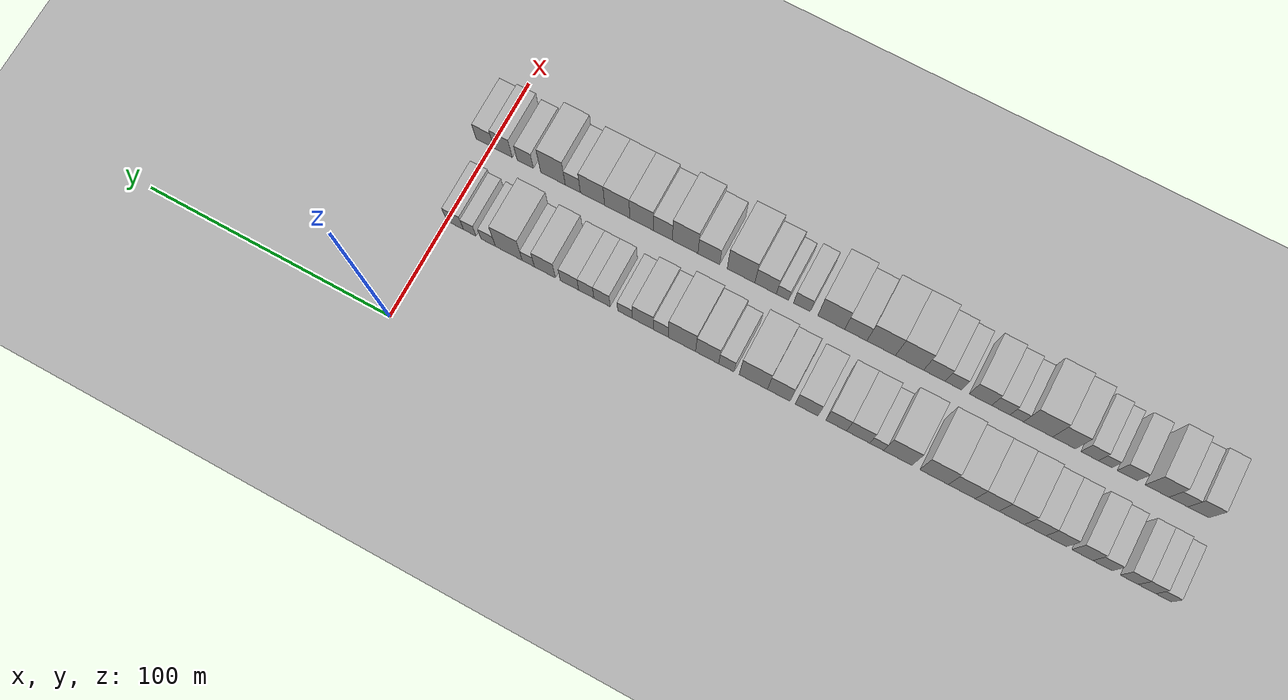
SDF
<sdf version="1.6">
 <world name="default">
  <include><name>ground_plane_1</name><uri>model://HANNAS_ground_plane</uri></include>
  <include>
   <name>ground_plane_2</name>
   <uri>model://HANNAS_ground_plane</uri>
   <pose>100 0 0  0 0 0</pose>
  </include>
  <model name="building_1">
   <static>1</static>
   <pose>50.0000 -279.1271 0 0.000000 0.000000 0.000000</pose>
   <link name="link">
    <pose>0 0 6.00 0 0 0</pose>
    <collision name="collision"><geometry><box><size>20.0000 5.7459 12.0000</size></box></geometry></collision>
    <visual name="visual">
     <cast_shadows>0</cast_shadows>
     <geometry><box><size>20.0000 5.7459 12.0000</size></box></geometry>
     <material>
      <script>
       <uri>model://HANNAS_wall/materials/scripts</uri>
       <uri>model://HANNAS_wall/materials/textures</uri>
       <name>vrc/HANNAS_wall</name>
      </script>
     </material>
    </visual>
   </link>
  </model>
  <model name="building_2">
   <static>1</static>
   <pose>50.0000 -273.0447 0 0.000000 0.000000 0.000000</pose>
   <link name="link">
    <pose>0 0 7.50 0 0 0</pose>
    <collision name="collision"><geometry><box><size>20.0000 6.4189 15.0000</size></box></geometry></collision>
    <visual name="visual">
     <cast_shadows>0</cast_shadows>
     <geometry><box><size>20.0000 6.4189 15.0000</size></box></geometry>
     <material>
      <script>
       <uri>model://HANNAS_wall/materials/scripts</uri>
       <uri>model://HANNAS_wall/materials/textures</uri>
       <name>vrc/HANNAS_wall</name>
      </script>
     </material>
    </visual>
   </link>
  </model>
  <model name="building_3">
   <static>1</static>
   <pose>50.0000 -266.5574 0 0.000000 0.000000 0.000000</pose>
   <link name="link">
    <pose>0 0 7.50 0 0 0</pose>
    <collision name="collision"><geometry><box><size>20.0000 6.5558 15.0000</size></box></geometry></collision>
    <visual name="visual">
     <cast_shadows>0</cast_shadows>
     <geometry><box><size>20.0000 6.5558 15.0000</size></box></geometry>
     <material>
      <script>
       <uri>model://HANNAS_wall/materials/scripts</uri>
       <uri>model://HANNAS_wall/materials/textures</uri>
       <name>vrc/HANNAS_wall</name>
      </script>
     </material>
    </visual>
   </link>
  </model>
  <model name="building_4">
   <static>1</static>
   <pose>50.0000 -256.7154 0 0.000000 0.000000 0.000000</pose>
   <link name="link">
    <pose>0 0 7.50 0 0 0</pose>
    <collision name="collision"><geometry><box><size>20.0000 7.1282 15.0000</size></box></geometry></collision>
    <visual name="visual">
     <cast_shadows>0</cast_shadows>
     <geometry><box><size>20.0000 7.1282 15.0000</size></box></geometry>
     <material>
      <script>
       <uri>model://HANNAS_wall/materials/scripts</uri>
       <uri>model://HANNAS_wall/materials/textures</uri>
       <name>vrc/HANNAS_wall</name>
      </script>
     </material>
    </visual>
   </link>
  </model>
  <model name="building_5">
   <static>1</static>
   <pose>50.0000 -249.2632 0 0.000000 0.000000 0.000000</pose>
   <link name="link">
    <pose>0 0 9.00 0 0 0</pose>
    <collision name="collision"><geometry><box><size>20.0000 7.7762 18.0000</size></box></geometry></collision>
    <visual name="visual">
     <cast_shadows>0</cast_shadows>
     <geometry><box><size>20.0000 7.7762 18.0000</size></box></geometry>
     <material>
      <script>
       <uri>model://HANNAS_wall/materials/scripts</uri>
       <uri>model://HANNAS_wall/materials/textures</uri>
       <name>vrc/HANNAS_wall</name>
      </script>
     </material>
    </visual>
   </link>
  </model>
  <model name="building_6">
   <static>1</static>
   <pose>50.0000 -239.5126 0 0.000000 0.000000 0.000000</pose>
   <link name="link">
    <pose>0 0 9.00 0 0 0</pose>
    <collision name="collision"><geometry><box><size>20.0000 7.7250 18.0000</size></box></geometry></collision>
    <visual name="visual">
     <cast_shadows>0</cast_shadows>
     <geometry><box><size>20.0000 7.7250 18.0000</size></box></geometry>
     <material>
      <script>
       <uri>model://HANNAS_wall/materials/scripts</uri>
       <uri>model://HANNAS_wall/materials/textures</uri>
       <name>vrc/HANNAS_wall</name>
      </script>
     </material>
    </visual>
   </link>
  </model>
  <model name="building_7">
   <static>1</static>
   <pose>50.0000 -231.6655 0 0.000000 0.000000 0.000000</pose>
   <link name="link">
    <pose>0 0 9.00 0 0 0</pose>
    <collision name="collision"><geometry><box><size>20.0000 7.9691 18.0000</size></box></geometry></collision>
    <visual name="visual">
     <cast_shadows>0</cast_shadows>
     <geometry><box><size>20.0000 7.9691 18.0000</size></box></geometry>
     <material>
      <script>
       <uri>model://HANNAS_wall/materials/scripts</uri>
       <uri>model://HANNAS_wall/materials/textures</uri>
       <name>vrc/HANNAS_wall</name>
      </script>
     </material>
    </visual>
   </link>
  </model>
  <model name="building_8">
   <static>1</static>
   <pose>50.0000 -222.8988 0 0.000000 0.000000 0.000000</pose>
   <link name="link">
    <pose>0 0 10.50 0 0 0</pose>
    <collision name="collision"><geometry><box><size>20.0000 9.5644 21.0000</size></box></geometry></collision>
    <visual name="visual">
     <cast_shadows>0</cast_shadows>
     <geometry><box><size>20.0000 9.5644 21.0000</size></box></geometry>
     <material>
      <script>
       <uri>model://HANNAS_wall/materials/scripts</uri>
       <uri>model://HANNAS_wall/materials/textures</uri>
       <name>vrc/HANNAS_wall</name>
      </script>
     </material>
    </visual>
   </link>
  </model>
  <model name="building_9">
   <static>1</static>
   <pose>50.0000 -213.6746 0 0.000000 0.000000 0.000000</pose>
   <link name="link">
    <pose>0 0 10.50 0 0 0</pose>
    <collision name="collision"><geometry><box><size>20.0000 8.8841 21.0000</size></box></geometry></collision>
    <visual name="visual">
     <cast_shadows>0</cast_shadows>
     <geometry><box><size>20.0000 8.8841 21.0000</size></box></geometry>
     <material>
      <script>
       <uri>model://HANNAS_wall/materials/scripts</uri>
       <uri>model://HANNAS_wall/materials/textures</uri>
       <name>vrc/HANNAS_wall</name>
      </script>
     </material>
    </visual>
   </link>
  </model>
  <model name="building_10">
   <static>1</static>
   <pose>50.0000 -204.1396 0 0.000000 0.000000 0.000000</pose>
   <link name="link">
    <pose>0 0 10.50 0 0 0</pose>
    <collision name="collision"><geometry><box><size>20.0000 10.1860 21.0000</size></box></geometry></collision>
    <visual name="visual">
     <cast_shadows>0</cast_shadows>
     <geometry><box><size>20.0000 10.1860 21.0000</size></box></geometry>
     <material>
      <script>
       <uri>model://HANNAS_wall/materials/scripts</uri>
       <uri>model://HANNAS_wall/materials/textures</uri>
       <name>vrc/HANNAS_wall</name>
      </script>
     </material>
    </visual>
   </link>
  </model>
  <model name="building_11">
   <static>1</static>
   <pose>50.0000 -193.5970 0 0.000000 0.000000 0.000000</pose>
   <link name="link">
    <pose>0 0 12.00 0 0 0</pose>
    <collision name="collision"><geometry><box><size>20.0000 10.8992 24.0000</size></box></geometry></collision>
    <visual name="visual">
     <cast_shadows>0</cast_shadows>
     <geometry><box><size>20.0000 10.8992 24.0000</size></box></geometry>
     <material>
      <script>
       <uri>model://HANNAS_wall/materials/scripts</uri>
       <uri>model://HANNAS_wall/materials/textures</uri>
       <name>vrc/HANNAS_wall</name>
      </script>
     </material>
    </visual>
   </link>
  </model>
  <model name="building_12">
   <static>1</static>
   <pose>50.0000 -179.7389 0 0.000000 0.000000 0.000000</pose>
   <link name="link">
    <pose>0 0 12.00 0 0 0</pose>
    <collision name="collision"><geometry><box><size>20.0000 10.8170 24.0000</size></box></geometry></collision>
    <visual name="visual">
     <cast_shadows>0</cast_shadows>
     <geometry><box><size>20.0000 10.8170 24.0000</size></box></geometry>
     <material>
      <script>
       <uri>model://HANNAS_wall/materials/scripts</uri>
       <uri>model://HANNAS_wall/materials/textures</uri>
       <name>vrc/HANNAS_wall</name>
      </script>
     </material>
    </visual>
   </link>
  </model>
  <model name="building_13">
   <static>1</static>
   <pose>50.0000 -171.6334 0 0.000000 0.000000 0.000000</pose>
   <link name="link">
    <pose>0 0 6.00 0 0 0</pose>
    <collision name="collision"><geometry><box><size>20.0000 5.3941 12.0000</size></box></geometry></collision>
    <visual name="visual">
     <cast_shadows>0</cast_shadows>
     <geometry><box><size>20.0000 5.3941 12.0000</size></box></geometry>
     <material>
      <script>
       <uri>model://HANNAS_wall/materials/scripts</uri>
       <uri>model://HANNAS_wall/materials/textures</uri>
       <name>vrc/HANNAS_wall</name>
      </script>
     </material>
    </visual>
   </link>
  </model>
  <model name="building_14">
   <static>1</static>
   <pose>50.0000 -164.4834 0 0.000000 0.000000 0.000000</pose>
   <link name="link">
    <pose>0 0 9.00 0 0 0</pose>
    <collision name="collision"><geometry><box><size>20.0000 8.9060 18.0000</size></box></geometry></collision>
    <visual name="visual">
     <cast_shadows>0</cast_shadows>
     <geometry><box><size>20.0000 8.9060 18.0000</size></box></geometry>
     <material>
      <script>
       <uri>model://HANNAS_wall/materials/scripts</uri>
       <uri>model://HANNAS_wall/materials/textures</uri>
       <name>vrc/HANNAS_wall</name>
      </script>
     </material>
    </visual>
   </link>
  </model>
  <model name="building_15">
   <static>1</static>
   <pose>50.0000 -155.9993 0 0.000000 0.000000 0.000000</pose>
   <link name="link">
    <pose>0 0 9.00 0 0 0</pose>
    <collision name="collision"><geometry><box><size>20.0000 8.0620 18.0000</size></box></geometry></collision>
    <visual name="visual">
     <cast_shadows>0</cast_shadows>
     <geometry><box><size>20.0000 8.0620 18.0000</size></box></geometry>
     <material>
      <script>
       <uri>model://HANNAS_wall/materials/scripts</uri>
       <uri>model://HANNAS_wall/materials/textures</uri>
       <name>vrc/HANNAS_wall</name>
      </script>
     </material>
    </visual>
   </link>
  </model>
  <model name="building_16">
   <static>1</static>
   <pose>50.0000 -144.5254 0 0.000000 0.000000 0.000000</pose>
   <link name="link">
    <pose>0 0 9.00 0 0 0</pose>
    <collision name="collision"><geometry><box><size>20.0000 8.8857 18.0000</size></box></geometry></collision>
    <visual name="visual">
     <cast_shadows>0</cast_shadows>
     <geometry><box><size>20.0000 8.8857 18.0000</size></box></geometry>
     <material>
      <script>
       <uri>model://HANNAS_wall/materials/scripts</uri>
       <uri>model://HANNAS_wall/materials/textures</uri>
       <name>vrc/HANNAS_wall</name>
      </script>
     </material>
    </visual>
   </link>
  </model>
  <model name="building_17">
   <static>1</static>
   <pose>50.0000 -133.6724 0 0.000000 0.000000 0.000000</pose>
   <link name="link">
    <pose>0 0 10.50 0 0 0</pose>
    <collision name="collision"><geometry><box><size>20.0000 8.8204 21.0000</size></box></geometry></collision>
    <visual name="visual">
     <cast_shadows>0</cast_shadows>
     <geometry><box><size>20.0000 8.8204 21.0000</size></box></geometry>
     <material>
      <script>
       <uri>model://HANNAS_wall/materials/scripts</uri>
       <uri>model://HANNAS_wall/materials/textures</uri>
       <name>vrc/HANNAS_wall</name>
      </script>
     </material>
    </visual>
   </link>
  </model>
  <model name="building_18">
   <static>1</static>
   <pose>50.0000 -123.7028 0 0.000000 0.000000 0.000000</pose>
   <link name="link">
    <pose>0 0 12.00 0 0 0</pose>
    <collision name="collision"><geometry><box><size>20.0000 11.1187 24.0000</size></box></geometry></collision>
    <visual name="visual">
     <cast_shadows>0</cast_shadows>
     <geometry><box><size>20.0000 11.1187 24.0000</size></box></geometry>
     <material>
      <script>
       <uri>model://HANNAS_wall/materials/scripts</uri>
       <uri>model://HANNAS_wall/materials/textures</uri>
       <name>vrc/HANNAS_wall</name>
      </script>
     </material>
    </visual>
   </link>
  </model>
  <model name="building_19">
   <static>1</static>
   <pose>50.0000 -113.0769 0 0.000000 0.000000 0.000000</pose>
   <link name="link">
    <pose>0 0 7.50 0 0 0</pose>
    <collision name="collision"><geometry><box><size>20.0000 6.1330 15.0000</size></box></geometry></collision>
    <visual name="visual">
     <cast_shadows>0</cast_shadows>
     <geometry><box><size>20.0000 6.1330 15.0000</size></box></geometry>
     <material>
      <script>
       <uri>model://HANNAS_wall/materials/scripts</uri>
       <uri>model://HANNAS_wall/materials/textures</uri>
       <name>vrc/HANNAS_wall</name>
      </script>
     </material>
    </visual>
   </link>
  </model>
  <model name="building_20">
   <static>1</static>
   <pose>50.0000 -105.4436 0 0.000000 0.000000 0.000000</pose>
   <link name="link">
    <pose>0 0 10.50 0 0 0</pose>
    <collision name="collision"><geometry><box><size>20.0000 9.1338 21.0000</size></box></geometry></collision>
    <visual name="visual">
     <cast_shadows>0</cast_shadows>
     <geometry><box><size>20.0000 9.1338 21.0000</size></box></geometry>
     <material>
      <script>
       <uri>model://HANNAS_wall/materials/scripts</uri>
       <uri>model://HANNAS_wall/materials/textures</uri>
       <name>vrc/HANNAS_wall</name>
      </script>
     </material>
    </visual>
   </link>
  </model>
  <model name="building_21">
   <static>1</static>
   <pose>50.0000 -95.4409 0 0.000000 0.000000 0.000000</pose>
   <link name="link">
    <pose>0 0 12.00 0 0 0</pose>
    <collision name="collision"><geometry><box><size>20.0000 10.8715 24.0000</size></box></geometry></collision>
    <visual name="visual">
     <cast_shadows>0</cast_shadows>
     <geometry><box><size>20.0000 10.8715 24.0000</size></box></geometry>
     <material>
      <script>
       <uri>model://HANNAS_wall/materials/scripts</uri>
       <uri>model://HANNAS_wall/materials/textures</uri>
       <name>vrc/HANNAS_wall</name>
      </script>
     </material>
    </visual>
   </link>
  </model>
  <model name="building_22">
   <static>1</static>
   <pose>50.0000 -86.9923 0 0.000000 0.000000 0.000000</pose>
   <link name="link">
    <pose>0 0 7.50 0 0 0</pose>
    <collision name="collision"><geometry><box><size>20.0000 6.0256 15.0000</size></box></geometry></collision>
    <visual name="visual">
     <cast_shadows>0</cast_shadows>
     <geometry><box><size>20.0000 6.0256 15.0000</size></box></geometry>
     <material>
      <script>
       <uri>model://HANNAS_wall/materials/scripts</uri>
       <uri>model://HANNAS_wall/materials/textures</uri>
       <name>vrc/HANNAS_wall</name>
      </script>
     </material>
    </visual>
   </link>
  </model>
  <model name="building_23">
   <static>1</static>
   <pose>50.0000 -79.8421 0 0.000000 0.000000 0.000000</pose>
   <link name="link">
    <pose>0 0 9.00 0 0 0</pose>
    <collision name="collision"><geometry><box><size>20.0000 8.2749 18.0000</size></box></geometry></collision>
    <visual name="visual">
     <cast_shadows>0</cast_shadows>
     <geometry><box><size>20.0000 8.2749 18.0000</size></box></geometry>
     <material>
      <script>
       <uri>model://HANNAS_wall/materials/scripts</uri>
       <uri>model://HANNAS_wall/materials/textures</uri>
       <name>vrc/HANNAS_wall</name>
      </script>
     </material>
    </visual>
   </link>
  </model>
  <model name="building_24">
   <static>1</static>
   <pose>50.0000 -72.7355 0 0.000000 0.000000 0.000000</pose>
   <link name="link">
    <pose>0 0 6.00 0 0 0</pose>
    <collision name="collision"><geometry><box><size>20.0000 5.9383 12.0000</size></box></geometry></collision>
    <visual name="visual">
     <cast_shadows>0</cast_shadows>
     <geometry><box><size>20.0000 5.9383 12.0000</size></box></geometry>
     <material>
      <script>
       <uri>model://HANNAS_wall/materials/scripts</uri>
       <uri>model://HANNAS_wall/materials/textures</uri>
       <name>vrc/HANNAS_wall</name>
      </script>
     </material>
    </visual>
   </link>
  </model>
  <model name="building_25">
   <static>1</static>
   <pose>50.0000 -63.4808 0 0.000000 0.000000 0.000000</pose>
   <link name="link">
    <pose>0 0 7.50 0 0 0</pose>
    <collision name="collision"><geometry><box><size>20.0000 6.5712 15.0000</size></box></geometry></collision>
    <visual name="visual">
     <cast_shadows>0</cast_shadows>
     <geometry><box><size>20.0000 6.5712 15.0000</size></box></geometry>
     <material>
      <script>
       <uri>model://HANNAS_wall/materials/scripts</uri>
       <uri>model://HANNAS_wall/materials/textures</uri>
       <name>vrc/HANNAS_wall</name>
      </script>
     </material>
    </visual>
   </link>
  </model>
  <model name="building_26">
   <static>1</static>
   <pose>50.0000 -57.1335 0 0.000000 0.000000 0.000000</pose>
   <link name="link">
    <pose>0 0 7.50 0 0 0</pose>
    <collision name="collision"><geometry><box><size>20.0000 6.1234 15.0000</size></box></geometry></collision>
    <visual name="visual">
     <cast_shadows>0</cast_shadows>
     <geometry><box><size>20.0000 6.1234 15.0000</size></box></geometry>
     <material>
      <script>
       <uri>model://HANNAS_wall/materials/scripts</uri>
       <uri>model://HANNAS_wall/materials/textures</uri>
       <name>vrc/HANNAS_wall</name>
      </script>
     </material>
    </visual>
   </link>
  </model>
  <model name="building_27">
   <static>1</static>
   <pose>50.0000 -50.3300 0 0.000000 0.000000 0.000000</pose>
   <link name="link">
    <pose>0 0 7.50 0 0 0</pose>
    <collision name="collision"><geometry><box><size>20.0000 7.4836 15.0000</size></box></geometry></collision>
    <visual name="visual">
     <cast_shadows>0</cast_shadows>
     <geometry><box><size>20.0000 7.4836 15.0000</size></box></geometry>
     <material>
      <script>
       <uri>model://HANNAS_wall/materials/scripts</uri>
       <uri>model://HANNAS_wall/materials/textures</uri>
       <name>vrc/HANNAS_wall</name>
      </script>
     </material>
    </visual>
   </link>
  </model>
  <model name="building_28">
   <static>1</static>
   <pose>50.0000 -40.3226 0 0.000000 0.000000 0.000000</pose>
   <link name="link">
    <pose>0 0 9.00 0 0 0</pose>
    <collision name="collision"><geometry><box><size>20.0000 8.5311 18.0000</size></box></geometry></collision>
    <visual name="visual">
     <cast_shadows>0</cast_shadows>
     <geometry><box><size>20.0000 8.5311 18.0000</size></box></geometry>
     <material>
      <script>
       <uri>model://HANNAS_wall/materials/scripts</uri>
       <uri>model://HANNAS_wall/materials/textures</uri>
       <name>vrc/HANNAS_wall</name>
      </script>
     </material>
    </visual>
   </link>
  </model>
  <model name="building_29">
   <static>1</static>
   <pose>50.0000 -33.5444 0 0.000000 0.000000 0.000000</pose>
   <link name="link">
    <pose>0 0 6.00 0 0 0</pose>
    <collision name="collision"><geometry><box><size>20.0000 5.0253 12.0000</size></box></geometry></collision>
    <visual name="visual">
     <cast_shadows>0</cast_shadows>
     <geometry><box><size>20.0000 5.0253 12.0000</size></box></geometry>
     <material>
      <script>
       <uri>model://HANNAS_wall/materials/scripts</uri>
       <uri>model://HANNAS_wall/materials/textures</uri>
       <name>vrc/HANNAS_wall</name>
      </script>
     </material>
    </visual>
   </link>
  </model>
  <model name="building_30">
   <static>1</static>
   <pose>50.0000 -25.5399 0 0.000000 0.000000 0.000000</pose>
   <link name="link">
    <pose>0 0 12.00 0 0 0</pose>
    <collision name="collision"><geometry><box><size>20.0000 10.9839 24.0000</size></box></geometry></collision>
    <visual name="visual">
     <cast_shadows>0</cast_shadows>
     <geometry><box><size>20.0000 10.9839 24.0000</size></box></geometry>
     <material>
      <script>
       <uri>model://HANNAS_wall/materials/scripts</uri>
       <uri>model://HANNAS_wall/materials/textures</uri>
       <name>vrc/HANNAS_wall</name>
      </script>
     </material>
    </visual>
   </link>
  </model>
  <model name="building_31">
   <static>1</static>
   <pose>50.0000 -17.0664 0 0.000000 0.000000 0.000000</pose>
   <link name="link">
    <pose>0 0 6.00 0 0 0</pose>
    <collision name="collision"><geometry><box><size>20.0000 5.9630 12.0000</size></box></geometry></collision>
    <visual name="visual">
     <cast_shadows>0</cast_shadows>
     <geometry><box><size>20.0000 5.9630 12.0000</size></box></geometry>
     <material>
      <script>
       <uri>model://HANNAS_wall/materials/scripts</uri>
       <uri>model://HANNAS_wall/materials/textures</uri>
       <name>vrc/HANNAS_wall</name>
      </script>
     </material>
    </visual>
   </link>
  </model>
  <model name="building_32">
   <static>1</static>
   <pose>50.0000 -9.5137 0 0.000000 0.000000 0.000000</pose>
   <link name="link">
    <pose>0 0 6.00 0 0 0</pose>
    <collision name="collision"><geometry><box><size>20.0000 5.1426 12.0000</size></box></geometry></collision>
    <visual name="visual">
     <cast_shadows>0</cast_shadows>
     <geometry><box><size>20.0000 5.1426 12.0000</size></box></geometry>
     <material>
      <script>
       <uri>model://HANNAS_wall/materials/scripts</uri>
       <uri>model://HANNAS_wall/materials/textures</uri>
       <name>vrc/HANNAS_wall</name>
      </script>
     </material>
    </visual>
   </link>
  </model>
  <model name="building_33">
   <static>1</static>
   <pose>50.0000 -3.4888 0 0.000000 0.000000 0.000000</pose>
   <link name="link">
    <pose>0 0 7.50 0 0 0</pose>
    <collision name="collision"><geometry><box><size>20.0000 6.9071 15.0000</size></box></geometry></collision>
    <visual name="visual">
     <cast_shadows>0</cast_shadows>
     <geometry><box><size>20.0000 6.9071 15.0000</size></box></geometry>
     <material>
      <script>
       <uri>model://HANNAS_wall/materials/scripts</uri>
       <uri>model://HANNAS_wall/materials/textures</uri>
       <name>vrc/HANNAS_wall</name>
      </script>
     </material>
    </visual>
   </link>
  </model>
  <model name="building_66">
   <static>1</static>
   <pose>82.0000 -278.1258 0 0.000000 0.000000 0.000000</pose>
   <link name="link">
    <pose>0 0 9.00 0 0 0</pose>
    <collision name="collision"><geometry><box><size>20.0000 7.7484 18.0000</size></box></geometry></collision>
    <visual name="visual">
     <cast_shadows>0</cast_shadows>
     <geometry><box><size>20.0000 7.7484 18.0000</size></box></geometry>
     <material>
      <script>
       <uri>model://HANNAS_wall/materials/scripts</uri>
       <uri>model://HANNAS_wall/materials/textures</uri>
       <name>vrc/HANNAS_wall</name>
      </script>
     </material>
    </visual>
   </link>
  </model>
  <model name="building_67">
   <static>1</static>
   <pose>82.0000 -270.7622 0 0.000000 0.000000 0.000000</pose>
   <link name="link">
    <pose>0 0 7.50 0 0 0</pose>
    <collision name="collision"><geometry><box><size>20.0000 6.9788 15.0000</size></box></geometry></collision>
    <visual name="visual">
     <cast_shadows>0</cast_shadows>
     <geometry><box><size>20.0000 6.9788 15.0000</size></box></geometry>
     <material>
      <script>
       <uri>model://HANNAS_wall/materials/scripts</uri>
       <uri>model://HANNAS_wall/materials/textures</uri>
       <name>vrc/HANNAS_wall</name>
      </script>
     </material>
    </visual>
   </link>
  </model>
  <model name="building_68">
   <static>1</static>
   <pose>82.0000 -262.8454 0 0.000000 0.000000 0.000000</pose>
   <link name="link">
    <pose>0 0 10.50 0 0 0</pose>
    <collision name="collision"><geometry><box><size>20.0000 8.8550 21.0000</size></box></geometry></collision>
    <visual name="visual">
     <cast_shadows>0</cast_shadows>
     <geometry><box><size>20.0000 8.8550 21.0000</size></box></geometry>
     <material>
      <script>
       <uri>model://HANNAS_wall/materials/scripts</uri>
       <uri>model://HANNAS_wall/materials/textures</uri>
       <name>vrc/HANNAS_wall</name>
      </script>
     </material>
    </visual>
   </link>
  </model>
  <model name="building_69">
   <static>1</static>
   <pose>82.0000 -251.6783 0 0.000000 0.000000 0.000000</pose>
   <link name="link">
    <pose>0 0 7.50 0 0 0</pose>
    <collision name="collision"><geometry><box><size>20.0000 7.4792 15.0000</size></box></geometry></collision>
    <visual name="visual">
     <cast_shadows>0</cast_shadows>
     <geometry><box><size>20.0000 7.4792 15.0000</size></box></geometry>
     <material>
      <script>
       <uri>model://HANNAS_wall/materials/scripts</uri>
       <uri>model://HANNAS_wall/materials/textures</uri>
       <name>vrc/HANNAS_wall</name>
      </script>
     </material>
    </visual>
   </link>
  </model>
  <model name="building_70">
   <static>1</static>
   <pose>82.0000 -243.3795 0 0.000000 0.000000 0.000000</pose>
   <link name="link">
    <pose>0 0 6.00 0 0 0</pose>
    <collision name="collision"><geometry><box><size>20.0000 5.1184 12.0000</size></box></geometry></collision>
    <visual name="visual">
     <cast_shadows>0</cast_shadows>
     <geometry><box><size>20.0000 5.1184 12.0000</size></box></geometry>
     <material>
      <script>
       <uri>model://HANNAS_wall/materials/scripts</uri>
       <uri>model://HANNAS_wall/materials/textures</uri>
       <name>vrc/HANNAS_wall</name>
      </script>
     </material>
    </visual>
   </link>
  </model>
  <model name="building_71">
   <static>1</static>
   <pose>82.0000 -237.5381 0 0.000000 0.000000 0.000000</pose>
   <link name="link">
    <pose>0 0 7.50 0 0 0</pose>
    <collision name="collision"><geometry><box><size>20.0000 6.5644 15.0000</size></box></geometry></collision>
    <visual name="visual">
     <cast_shadows>0</cast_shadows>
     <geometry><box><size>20.0000 6.5644 15.0000</size></box></geometry>
     <material>
      <script>
       <uri>model://HANNAS_wall/materials/scripts</uri>
       <uri>model://HANNAS_wall/materials/textures</uri>
       <name>vrc/HANNAS_wall</name>
      </script>
     </material>
    </visual>
   </link>
  </model>
  <model name="building_72">
   <static>1</static>
   <pose>82.0000 -227.9323 0 0.000000 0.000000 0.000000</pose>
   <link name="link">
    <pose>0 0 10.50 0 0 0</pose>
    <collision name="collision"><geometry><box><size>20.0000 8.6473 21.0000</size></box></geometry></collision>
    <visual name="visual">
     <cast_shadows>0</cast_shadows>
     <geometry><box><size>20.0000 8.6473 21.0000</size></box></geometry>
     <material>
      <script>
       <uri>model://HANNAS_wall/materials/scripts</uri>
       <uri>model://HANNAS_wall/materials/textures</uri>
       <name>vrc/HANNAS_wall</name>
      </script>
     </material>
    </visual>
   </link>
  </model>
  <model name="building_73">
   <static>1</static>
   <pose>82.0000 -218.0600 0 0.000000 0.000000 0.000000</pose>
   <link name="link">
    <pose>0 0 12.00 0 0 0</pose>
    <collision name="collision"><geometry><box><size>20.0000 11.0973 24.0000</size></box></geometry></collision>
    <visual name="visual">
     <cast_shadows>0</cast_shadows>
     <geometry><box><size>20.0000 11.0973 24.0000</size></box></geometry>
     <material>
      <script>
       <uri>model://HANNAS_wall/materials/scripts</uri>
       <uri>model://HANNAS_wall/materials/textures</uri>
       <name>vrc/HANNAS_wall</name>
      </script>
     </material>
    </visual>
   </link>
  </model>
  <model name="building_74">
   <static>1</static>
   <pose>82.0000 -209.9488 0 0.000000 0.000000 0.000000</pose>
   <link name="link">
    <pose>0 0 6.00 0 0 0</pose>
    <collision name="collision"><geometry><box><size>20.0000 5.1251 12.0000</size></box></geometry></collision>
    <visual name="visual">
     <cast_shadows>0</cast_shadows>
     <geometry><box><size>20.0000 5.1251 12.0000</size></box></geometry>
     <material>
      <script>
       <uri>model://HANNAS_wall/materials/scripts</uri>
       <uri>model://HANNAS_wall/materials/textures</uri>
       <name>vrc/HANNAS_wall</name>
      </script>
     </material>
    </visual>
   </link>
  </model>
  <model name="building_75">
   <static>1</static>
   <pose>82.0000 -203.8757 0 0.000000 0.000000 0.000000</pose>
   <link name="link">
    <pose>0 0 7.50 0 0 0</pose>
    <collision name="collision"><geometry><box><size>20.0000 7.0211 15.0000</size></box></geometry></collision>
    <visual name="visual">
     <cast_shadows>0</cast_shadows>
     <geometry><box><size>20.0000 7.0211 15.0000</size></box></geometry>
     <material>
      <script>
       <uri>model://HANNAS_wall/materials/scripts</uri>
       <uri>model://HANNAS_wall/materials/textures</uri>
       <name>vrc/HANNAS_wall</name>
      </script>
     </material>
    </visual>
   </link>
  </model>
  <model name="building_76">
   <static>1</static>
   <pose>82.0000 -196.0685 0 0.000000 0.000000 0.000000</pose>
   <link name="link">
    <pose>0 0 9.00 0 0 0</pose>
    <collision name="collision"><geometry><box><size>20.0000 8.5933 18.0000</size></box></geometry></collision>
    <visual name="visual">
     <cast_shadows>0</cast_shadows>
     <geometry><box><size>20.0000 8.5933 18.0000</size></box></geometry>
     <material>
      <script>
       <uri>model://HANNAS_wall/materials/scripts</uri>
       <uri>model://HANNAS_wall/materials/textures</uri>
       <name>vrc/HANNAS_wall</name>
      </script>
     </material>
    </visual>
   </link>
  </model>
  <model name="building_77">
   <static>1</static>
   <pose>82.0000 -185.5976 0 0.000000 0.000000 0.000000</pose>
   <link name="link">
    <pose>0 0 7.50 0 0 0</pose>
    <collision name="collision"><geometry><box><size>20.0000 6.3484 15.0000</size></box></geometry></collision>
    <visual name="visual">
     <cast_shadows>0</cast_shadows>
     <geometry><box><size>20.0000 6.3484 15.0000</size></box></geometry>
     <material>
      <script>
       <uri>model://HANNAS_wall/materials/scripts</uri>
       <uri>model://HANNAS_wall/materials/textures</uri>
       <name>vrc/HANNAS_wall</name>
      </script>
     </material>
    </visual>
   </link>
  </model>
  <model name="building_78">
   <static>1</static>
   <pose>82.0000 -178.2607 0 0.000000 0.000000 0.000000</pose>
   <link name="link">
    <pose>0 0 9.00 0 0 0</pose>
    <collision name="collision"><geometry><box><size>20.0000 8.3253 18.0000</size></box></geometry></collision>
    <visual name="visual">
     <cast_shadows>0</cast_shadows>
     <geometry><box><size>20.0000 8.3253 18.0000</size></box></geometry>
     <material>
      <script>
       <uri>model://HANNAS_wall/materials/scripts</uri>
       <uri>model://HANNAS_wall/materials/textures</uri>
       <name>vrc/HANNAS_wall</name>
      </script>
     </material>
    </visual>
   </link>
  </model>
  <model name="building_79">
   <static>1</static>
   <pose>82.0000 -168.6350 0 0.000000 0.000000 0.000000</pose>
   <link name="link">
    <pose>0 0 12.00 0 0 0</pose>
    <collision name="collision"><geometry><box><size>20.0000 10.9263 24.0000</size></box></geometry></collision>
    <visual name="visual">
     <cast_shadows>0</cast_shadows>
     <geometry><box><size>20.0000 10.9263 24.0000</size></box></geometry>
     <material>
      <script>
       <uri>model://HANNAS_wall/materials/scripts</uri>
       <uri>model://HANNAS_wall/materials/textures</uri>
       <name>vrc/HANNAS_wall</name>
      </script>
     </material>
    </visual>
   </link>
  </model>
  <model name="building_80">
   <static>1</static>
   <pose>82.0000 -157.5782 0 0.000000 0.000000 0.000000</pose>
   <link name="link">
    <pose>0 0 12.00 0 0 0</pose>
    <collision name="collision"><geometry><box><size>20.0000 11.1873 24.0000</size></box></geometry></collision>
    <visual name="visual">
     <cast_shadows>0</cast_shadows>
     <geometry><box><size>20.0000 11.1873 24.0000</size></box></geometry>
     <material>
      <script>
       <uri>model://HANNAS_wall/materials/scripts</uri>
       <uri>model://HANNAS_wall/materials/textures</uri>
       <name>vrc/HANNAS_wall</name>
      </script>
     </material>
    </visual>
   </link>
  </model>
  <model name="building_81">
   <static>1</static>
   <pose>82.0000 -147.6214 0 0.000000 0.000000 0.000000</pose>
   <link name="link">
    <pose>0 0 9.00 0 0 0</pose>
    <collision name="collision"><geometry><box><size>20.0000 8.7261 18.0000</size></box></geometry></collision>
    <visual name="visual">
     <cast_shadows>0</cast_shadows>
     <geometry><box><size>20.0000 8.7261 18.0000</size></box></geometry>
     <material>
      <script>
       <uri>model://HANNAS_wall/materials/scripts</uri>
       <uri>model://HANNAS_wall/materials/textures</uri>
       <name>vrc/HANNAS_wall</name>
      </script>
     </material>
    </visual>
   </link>
  </model>
  <model name="building_82">
   <static>1</static>
   <pose>82.0000 -137.9903 0 0.000000 0.000000 0.000000</pose>
   <link name="link">
    <pose>0 0 12.00 0 0 0</pose>
    <collision name="collision"><geometry><box><size>20.0000 10.5361 24.0000</size></box></geometry></collision>
    <visual name="visual">
     <cast_shadows>0</cast_shadows>
     <geometry><box><size>20.0000 10.5361 24.0000</size></box></geometry>
     <material>
      <script>
       <uri>model://HANNAS_wall/materials/scripts</uri>
       <uri>model://HANNAS_wall/materials/textures</uri>
       <name>vrc/HANNAS_wall</name>
      </script>
     </material>
    </visual>
   </link>
  </model>
  <model name="building_83">
   <static>1</static>
   <pose>82.0000 -126.3997 0 0.000000 0.000000 0.000000</pose>
   <link name="link">
    <pose>0 0 7.50 0 0 0</pose>
    <collision name="collision"><geometry><box><size>20.0000 6.6450 15.0000</size></box></geometry></collision>
    <visual name="visual">
     <cast_shadows>0</cast_shadows>
     <geometry><box><size>20.0000 6.6450 15.0000</size></box></geometry>
     <material>
      <script>
       <uri>model://HANNAS_wall/materials/scripts</uri>
       <uri>model://HANNAS_wall/materials/textures</uri>
       <name>vrc/HANNAS_wall</name>
      </script>
     </material>
    </visual>
   </link>
  </model>
  <model name="building_84">
   <static>1</static>
   <pose>82.0000 -118.6715 0 0.000000 0.000000 0.000000</pose>
   <link name="link">
    <pose>0 0 6.00 0 0 0</pose>
    <collision name="collision"><geometry><box><size>20.0000 4.8114 12.0000</size></box></geometry></collision>
    <visual name="visual">
     <cast_shadows>0</cast_shadows>
     <geometry><box><size>20.0000 4.8114 12.0000</size></box></geometry>
     <material>
      <script>
       <uri>model://HANNAS_wall/materials/scripts</uri>
       <uri>model://HANNAS_wall/materials/textures</uri>
       <name>vrc/HANNAS_wall</name>
      </script>
     </material>
    </visual>
   </link>
  </model>
  <model name="building_85">
   <static>1</static>
   <pose>82.0000 -111.9517 0 0.000000 0.000000 0.000000</pose>
   <link name="link">
    <pose>0 0 9.00 0 0 0</pose>
    <collision name="collision"><geometry><box><size>20.0000 8.6282 18.0000</size></box></geometry></collision>
    <visual name="visual">
     <cast_shadows>0</cast_shadows>
     <geometry><box><size>20.0000 8.6282 18.0000</size></box></geometry>
     <material>
      <script>
       <uri>model://HANNAS_wall/materials/scripts</uri>
       <uri>model://HANNAS_wall/materials/textures</uri>
       <name>vrc/HANNAS_wall</name>
      </script>
     </material>
    </visual>
   </link>
  </model>
  <model name="building_86">
   <static>1</static>
   <pose>82.0000 -102.1115 0 0.000000 0.000000 0.000000</pose>
   <link name="link">
    <pose>0 0 12.00 0 0 0</pose>
    <collision name="collision"><geometry><box><size>20.0000 11.0522 24.0000</size></box></geometry></collision>
    <visual name="visual">
     <cast_shadows>0</cast_shadows>
     <geometry><box><size>20.0000 11.0522 24.0000</size></box></geometry>
     <material>
      <script>
       <uri>model://HANNAS_wall/materials/scripts</uri>
       <uri>model://HANNAS_wall/materials/textures</uri>
       <name>vrc/HANNAS_wall</name>
      </script>
     </material>
    </visual>
   </link>
  </model>
  <model name="building_87">
   <static>1</static>
   <pose>82.0000 -89.2101 0 0.000000 0.000000 0.000000</pose>
   <link name="link">
    <pose>0 0 9.00 0 0 0</pose>
    <collision name="collision"><geometry><box><size>20.0000 8.7506 18.0000</size></box></geometry></collision>
    <visual name="visual">
     <cast_shadows>0</cast_shadows>
     <geometry><box><size>20.0000 8.7506 18.0000</size></box></geometry>
     <material>
      <script>
       <uri>model://HANNAS_wall/materials/scripts</uri>
       <uri>model://HANNAS_wall/materials/textures</uri>
       <name>vrc/HANNAS_wall</name>
      </script>
     </material>
    </visual>
   </link>
  </model>
  <model name="building_88">
   <static>1</static>
   <pose>82.0000 -79.6699 0 0.000000 0.000000 0.000000</pose>
   <link name="link">
    <pose>0 0 12.00 0 0 0</pose>
    <collision name="collision"><geometry><box><size>20.0000 10.3298 24.0000</size></box></geometry></collision>
    <visual name="visual">
     <cast_shadows>0</cast_shadows>
     <geometry><box><size>20.0000 10.3298 24.0000</size></box></geometry>
     <material>
      <script>
       <uri>model://HANNAS_wall/materials/scripts</uri>
       <uri>model://HANNAS_wall/materials/textures</uri>
       <name>vrc/HANNAS_wall</name>
      </script>
     </material>
    </visual>
   </link>
  </model>
  <model name="building_89">
   <static>1</static>
   <pose>82.0000 -70.6228 0 0.000000 0.000000 0.000000</pose>
   <link name="link">
    <pose>0 0 9.00 0 0 0</pose>
    <collision name="collision"><geometry><box><size>20.0000 7.7644 18.0000</size></box></geometry></collision>
    <visual name="visual">
     <cast_shadows>0</cast_shadows>
     <geometry><box><size>20.0000 7.7644 18.0000</size></box></geometry>
     <material>
      <script>
       <uri>model://HANNAS_wall/materials/scripts</uri>
       <uri>model://HANNAS_wall/materials/textures</uri>
       <name>vrc/HANNAS_wall</name>
      </script>
     </material>
    </visual>
   </link>
  </model>
  <model name="building_90">
   <static>1</static>
   <pose>82.0000 -61.9629 0 0.000000 0.000000 0.000000</pose>
   <link name="link">
    <pose>0 0 10.50 0 0 0</pose>
    <collision name="collision"><geometry><box><size>20.0000 9.5555 21.0000</size></box></geometry></collision>
    <visual name="visual">
     <cast_shadows>0</cast_shadows>
     <geometry><box><size>20.0000 9.5555 21.0000</size></box></geometry>
     <material>
      <script>
       <uri>model://HANNAS_wall/materials/scripts</uri>
       <uri>model://HANNAS_wall/materials/textures</uri>
       <name>vrc/HANNAS_wall</name>
      </script>
     </material>
    </visual>
   </link>
  </model>
  <model name="building_91">
   <static>1</static>
   <pose>82.0000 -52.0444 0 0.000000 0.000000 0.000000</pose>
   <link name="link">
    <pose>0 0 10.50 0 0 0</pose>
    <collision name="collision"><geometry><box><size>20.0000 10.2815 21.0000</size></box></geometry></collision>
    <visual name="visual">
     <cast_shadows>0</cast_shadows>
     <geometry><box><size>20.0000 10.2815 21.0000</size></box></geometry>
     <material>
      <script>
       <uri>model://HANNAS_wall/materials/scripts</uri>
       <uri>model://HANNAS_wall/materials/textures</uri>
       <name>vrc/HANNAS_wall</name>
      </script>
     </material>
    </visual>
   </link>
  </model>
  <model name="building_92">
   <static>1</static>
   <pose>82.0000 -41.9251 0 0.000000 0.000000 0.000000</pose>
   <link name="link">
    <pose>0 0 10.50 0 0 0</pose>
    <collision name="collision"><geometry><box><size>20.0000 9.9572 21.0000</size></box></geometry></collision>
    <visual name="visual">
     <cast_shadows>0</cast_shadows>
     <geometry><box><size>20.0000 9.9572 21.0000</size></box></geometry>
     <material>
      <script>
       <uri>model://HANNAS_wall/materials/scripts</uri>
       <uri>model://HANNAS_wall/materials/textures</uri>
       <name>vrc/HANNAS_wall</name>
      </script>
     </material>
    </visual>
   </link>
  </model>
  <model name="building_93">
   <static>1</static>
   <pose>82.0000 -33.8175 0 0.000000 0.000000 0.000000</pose>
   <link name="link">
    <pose>0 0 7.50 0 0 0</pose>
    <collision name="collision"><geometry><box><size>20.0000 6.2579 15.0000</size></box></geometry></collision>
    <visual name="visual">
     <cast_shadows>0</cast_shadows>
     <geometry><box><size>20.0000 6.2579 15.0000</size></box></geometry>
     <material>
      <script>
       <uri>model://HANNAS_wall/materials/scripts</uri>
       <uri>model://HANNAS_wall/materials/textures</uri>
       <name>vrc/HANNAS_wall</name>
      </script>
     </material>
    </visual>
   </link>
  </model>
  <model name="building_94">
   <static>1</static>
   <pose>82.0000 -25.5947 0 0.000000 0.000000 0.000000</pose>
   <link name="link">
    <pose>0 0 12.00 0 0 0</pose>
    <collision name="collision"><geometry><box><size>20.0000 10.1877 24.0000</size></box></geometry></collision>
    <visual name="visual">
     <cast_shadows>0</cast_shadows>
     <geometry><box><size>20.0000 10.1877 24.0000</size></box></geometry>
     <material>
      <script>
       <uri>model://HANNAS_wall/materials/scripts</uri>
       <uri>model://HANNAS_wall/materials/textures</uri>
       <name>vrc/HANNAS_wall</name>
      </script>
     </material>
    </visual>
   </link>
  </model>
  <model name="building_95">
   <static>1</static>
   <pose>82.0000 -14.0971 0 0.000000 0.000000 0.000000</pose>
   <link name="link">
    <pose>0 0 7.50 0 0 0</pose>
    <collision name="collision"><geometry><box><size>20.0000 6.8077 15.0000</size></box></geometry></collision>
    <visual name="visual">
     <cast_shadows>0</cast_shadows>
     <geometry><box><size>20.0000 6.8077 15.0000</size></box></geometry>
     <material>
      <script>
       <uri>model://HANNAS_wall/materials/scripts</uri>
       <uri>model://HANNAS_wall/materials/textures</uri>
       <name>vrc/HANNAS_wall</name>
      </script>
     </material>
    </visual>
   </link>
  </model>
  <model name="building_96">
   <static>1</static>
   <pose>82.0000 -4.8218 0 0.000000 0.000000 0.000000</pose>
   <link name="link">
    <pose>0 0 9.00 0 0 0</pose>
    <collision name="collision"><geometry><box><size>20.0000 7.7428 18.0000</size></box></geometry></collision>
    <visual name="visual">
     <cast_shadows>0</cast_shadows>
     <geometry><box><size>20.0000 7.7428 18.0000</size></box></geometry>
     <material>
      <script>
       <uri>model://HANNAS_wall/materials/scripts</uri>
       <uri>model://HANNAS_wall/materials/textures</uri>
       <name>vrc/HANNAS_wall</name>
      </script>
     </material>
    </visual>
   </link>
  </model>
  <model name="building_97">
   <static>1</static>
   <pose>82.0000 2.7654 0 0.000000 0.000000 0.000000</pose>
   <link name="link">
    <pose>0 0 7.50 0 0 0</pose>
    <collision name="collision"><geometry><box><size>20.0000 7.4316 15.0000</size></box></geometry></collision>
    <visual name="visual">
     <cast_shadows>0</cast_shadows>
     <geometry><box><size>20.0000 7.4316 15.0000</size></box></geometry>
     <material>
      <script>
       <uri>model://HANNAS_wall/materials/scripts</uri>
       <uri>model://HANNAS_wall/materials/textures</uri>
       <name>vrc/HANNAS_wall</name>
      </script>
     </material>
    </visual>
   </link>
  </model>
 </world>
</sdf>
